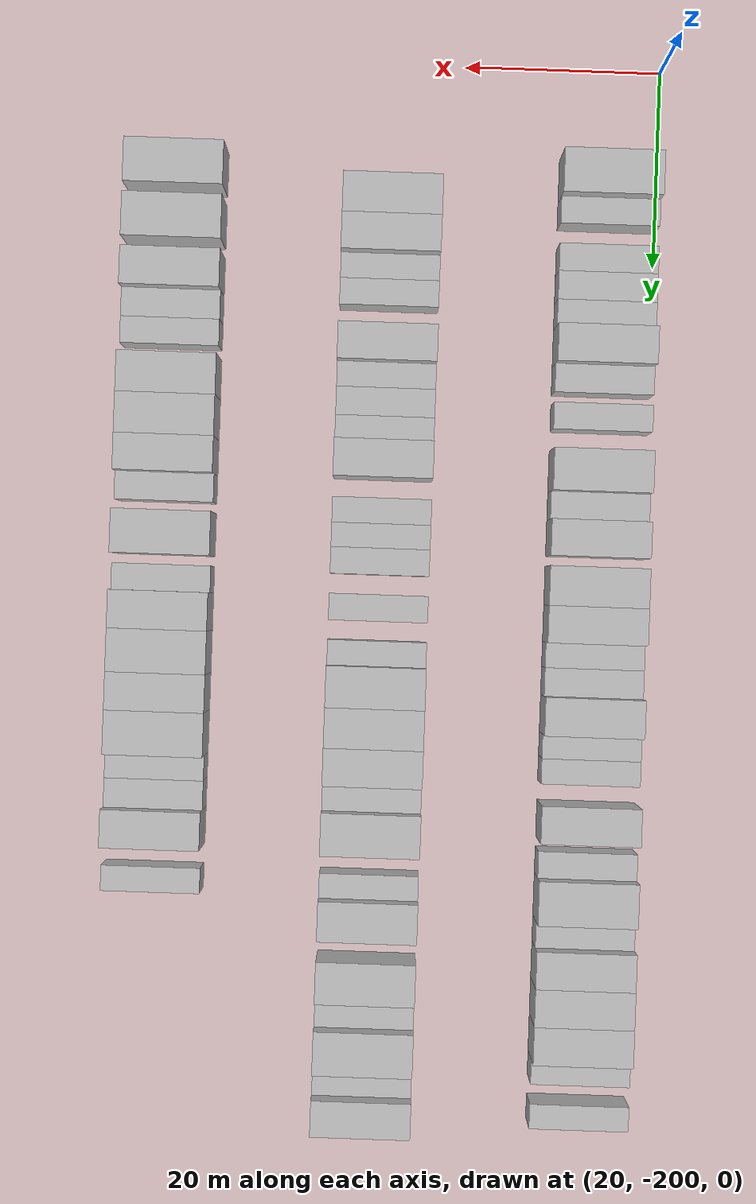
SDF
<sdf version="1.6">
 <world name="default">
  <model name="building_50">
   <static>1</static>
   <pose>25.0000 -188.4832 0 0.000000 0.000000 0.000000</pose>
   <link name="link">
    <pose>0 0 4.50 0 0 0</pose>
    <collision name="collision"><geometry><box><size>10.0000 4.4485 9.0000</size></box></geometry></collision>
    <visual name="visual">
     <cast_shadows>0</cast_shadows>
     <geometry><box><size>10.0000 4.4485 9.0000</size></box></geometry>
     <material>
      <script>
       <uri>model://HANNAS_wall/materials/scripts</uri>
       <uri>model://HANNAS_wall/materials/textures</uri>
       <name>vrc/HANNAS_wall</name>
      </script>
     </material>
    </visual>
   </link>
  </model>
  <model name="building_51">
   <static>1</static>
   <pose>25.0000 -184.9009 0 0.000000 0.000000 0.000000</pose>
   <link name="link">
    <pose>0 0 3.00 0 0 0</pose>
    <collision name="collision"><geometry><box><size>10.0000 2.7162 6.0000</size></box></geometry></collision>
    <visual name="visual">
     <cast_shadows>0</cast_shadows>
     <geometry><box><size>10.0000 2.7162 6.0000</size></box></geometry>
     <material>
      <script>
       <uri>model://HANNAS_wall/materials/scripts</uri>
       <uri>model://HANNAS_wall/materials/textures</uri>
       <name>vrc/HANNAS_wall</name>
      </script>
     </material>
    </visual>
   </link>
  </model>
  <model name="building_52">
   <static>1</static>
   <pose>25.0000 -180.1478 0 0.000000 0.000000 0.000000</pose>
   <link name="link">
    <pose>0 0 3.00 0 0 0</pose>
    <collision name="collision"><geometry><box><size>10.0000 2.7901 6.0000</size></box></geometry></collision>
    <visual name="visual">
     <cast_shadows>0</cast_shadows>
     <geometry><box><size>10.0000 2.7901 6.0000</size></box></geometry>
     <material>
      <script>
       <uri>model://HANNAS_wall/materials/scripts</uri>
       <uri>model://HANNAS_wall/materials/textures</uri>
       <name>vrc/HANNAS_wall</name>
      </script>
     </material>
    </visual>
   </link>
  </model>
  <model name="building_53">
   <static>1</static>
   <pose>25.0000 -177.3120 0 0.000000 0.000000 0.000000</pose>
   <link name="link">
    <pose>0 0 3.00 0 0 0</pose>
    <collision name="collision"><geometry><box><size>10.0000 2.8815 6.0000</size></box></geometry></collision>
    <visual name="visual">
     <cast_shadows>0</cast_shadows>
     <geometry><box><size>10.0000 2.8815 6.0000</size></box></geometry>
     <material>
      <script>
       <uri>model://HANNAS_wall/materials/scripts</uri>
       <uri>model://HANNAS_wall/materials/textures</uri>
       <name>vrc/HANNAS_wall</name>
      </script>
     </material>
    </visual>
   </link>
  </model>
  <model name="building_54">
   <static>1</static>
   <pose>25.0000 -174.5339 0 0.000000 0.000000 0.000000</pose>
   <link name="link">
    <pose>0 0 3.00 0 0 0</pose>
    <collision name="collision"><geometry><box><size>10.0000 2.6746 6.0000</size></box></geometry></collision>
    <visual name="visual">
     <cast_shadows>0</cast_shadows>
     <geometry><box><size>10.0000 2.6746 6.0000</size></box></geometry>
     <material>
      <script>
       <uri>model://HANNAS_wall/materials/scripts</uri>
       <uri>model://HANNAS_wall/materials/textures</uri>
       <name>vrc/HANNAS_wall</name>
      </script>
     </material>
    </visual>
   </link>
  </model>
  <model name="building_55">
   <static>1</static>
   <pose>25.0000 -171.2971 0 0.000000 0.000000 0.000000</pose>
   <link name="link">
    <pose>0 0 4.50 0 0 0</pose>
    <collision name="collision"><geometry><box><size>10.0000 3.7990 9.0000</size></box></geometry></collision>
    <visual name="visual">
     <cast_shadows>0</cast_shadows>
     <geometry><box><size>10.0000 3.7990 9.0000</size></box></geometry>
     <material>
      <script>
       <uri>model://HANNAS_wall/materials/scripts</uri>
       <uri>model://HANNAS_wall/materials/textures</uri>
       <name>vrc/HANNAS_wall</name>
      </script>
     </material>
    </visual>
   </link>
  </model>
  <model name="building_56">
   <static>1</static>
   <pose>25.0000 -167.9520 0 0.000000 0.000000 0.000000</pose>
   <link name="link">
    <pose>0 0 3.00 0 0 0</pose>
    <collision name="collision"><geometry><box><size>10.0000 2.8911 6.0000</size></box></geometry></collision>
    <visual name="visual">
     <cast_shadows>0</cast_shadows>
     <geometry><box><size>10.0000 2.8911 6.0000</size></box></geometry>
     <material>
      <script>
       <uri>model://HANNAS_wall/materials/scripts</uri>
       <uri>model://HANNAS_wall/materials/textures</uri>
       <name>vrc/HANNAS_wall</name>
      </script>
     </material>
    </visual>
   </link>
  </model>
  <model name="building_57">
   <static>1</static>
   <pose>25.0000 -164.1406 0 0.000000 0.000000 0.000000</pose>
   <link name="link">
    <pose>0 0 3.00 0 0 0</pose>
    <collision name="collision"><geometry><box><size>10.0000 2.7318 6.0000</size></box></geometry></collision>
    <visual name="visual">
     <cast_shadows>0</cast_shadows>
     <geometry><box><size>10.0000 2.7318 6.0000</size></box></geometry>
     <material>
      <script>
       <uri>model://HANNAS_wall/materials/scripts</uri>
       <uri>model://HANNAS_wall/materials/textures</uri>
       <name>vrc/HANNAS_wall</name>
      </script>
     </material>
    </visual>
   </link>
  </model>
  <model name="building_58">
   <static>1</static>
   <pose>25.0000 -158.6463 0 0.000000 0.000000 0.000000</pose>
   <link name="link">
    <pose>0 0 4.50 0 0 0</pose>
    <collision name="collision"><geometry><box><size>10.0000 4.2568 9.0000</size></box></geometry></collision>
    <visual name="visual">
     <cast_shadows>0</cast_shadows>
     <geometry><box><size>10.0000 4.2568 9.0000</size></box></geometry>
     <material>
      <script>
       <uri>model://HANNAS_wall/materials/scripts</uri>
       <uri>model://HANNAS_wall/materials/textures</uri>
       <name>vrc/HANNAS_wall</name>
      </script>
     </material>
    </visual>
   </link>
  </model>
  <model name="building_59">
   <static>1</static>
   <pose>25.0000 -155.0897 0 0.000000 0.000000 0.000000</pose>
   <link name="link">
    <pose>0 0 3.00 0 0 0</pose>
    <collision name="collision"><geometry><box><size>10.0000 2.8565 6.0000</size></box></geometry></collision>
    <visual name="visual">
     <cast_shadows>0</cast_shadows>
     <geometry><box><size>10.0000 2.8565 6.0000</size></box></geometry>
     <material>
      <script>
       <uri>model://HANNAS_wall/materials/scripts</uri>
       <uri>model://HANNAS_wall/materials/textures</uri>
       <name>vrc/HANNAS_wall</name>
      </script>
     </material>
    </visual>
   </link>
  </model>
  <model name="building_60">
   <static>1</static>
   <pose>25.0000 -151.8182 0 0.000000 0.000000 0.000000</pose>
   <link name="link">
    <pose>0 0 4.50 0 0 0</pose>
    <collision name="collision"><geometry><box><size>10.0000 3.6864 9.0000</size></box></geometry></collision>
    <visual name="visual">
     <cast_shadows>0</cast_shadows>
     <geometry><box><size>10.0000 3.6864 9.0000</size></box></geometry>
     <material>
      <script>
       <uri>model://HANNAS_wall/materials/scripts</uri>
       <uri>model://HANNAS_wall/materials/textures</uri>
       <name>vrc/HANNAS_wall</name>
      </script>
     </material>
    </visual>
   </link>
  </model>
  <model name="building_61">
   <static>1</static>
   <pose>25.0000 -146.9808 0 0.000000 0.000000 0.000000</pose>
   <link name="link">
    <pose>0 0 4.50 0 0 0</pose>
    <collision name="collision"><geometry><box><size>10.0000 3.9885 9.0000</size></box></geometry></collision>
    <visual name="visual">
     <cast_shadows>0</cast_shadows>
     <geometry><box><size>10.0000 3.9885 9.0000</size></box></geometry>
     <material>
      <script>
       <uri>model://HANNAS_wall/materials/scripts</uri>
       <uri>model://HANNAS_wall/materials/textures</uri>
       <name>vrc/HANNAS_wall</name>
      </script>
     </material>
    </visual>
   </link>
  </model>
  <model name="building_62">
   <static>1</static>
   <pose>25.0000 -143.1180 0 0.000000 0.000000 0.000000</pose>
   <link name="link">
    <pose>0 0 4.50 0 0 0</pose>
    <collision name="collision"><geometry><box><size>10.0000 3.7372 9.0000</size></box></geometry></collision>
    <visual name="visual">
     <cast_shadows>0</cast_shadows>
     <geometry><box><size>10.0000 3.7372 9.0000</size></box></geometry>
     <material>
      <script>
       <uri>model://HANNAS_wall/materials/scripts</uri>
       <uri>model://HANNAS_wall/materials/textures</uri>
       <name>vrc/HANNAS_wall</name>
      </script>
     </material>
    </visual>
   </link>
  </model>
  <model name="building_63">
   <static>1</static>
   <pose>25.0000 -139.9731 0 0.000000 0.000000 0.000000</pose>
   <link name="link">
    <pose>0 0 3.00 0 0 0</pose>
    <collision name="collision"><geometry><box><size>10.0000 2.5526 6.0000</size></box></geometry></collision>
    <visual name="visual">
     <cast_shadows>0</cast_shadows>
     <geometry><box><size>10.0000 2.5526 6.0000</size></box></geometry>
     <material>
      <script>
       <uri>model://HANNAS_wall/materials/scripts</uri>
       <uri>model://HANNAS_wall/materials/textures</uri>
       <name>vrc/HANNAS_wall</name>
      </script>
     </material>
    </visual>
   </link>
  </model>
  <model name="building_64">
   <static>1</static>
   <pose>25.0000 -137.2530 0 0.000000 0.000000 0.000000</pose>
   <link name="link">
    <pose>0 0 3.00 0 0 0</pose>
    <collision name="collision"><geometry><box><size>10.0000 2.8875 6.0000</size></box></geometry></collision>
    <visual name="visual">
     <cast_shadows>0</cast_shadows>
     <geometry><box><size>10.0000 2.8875 6.0000</size></box></geometry>
     <material>
      <script>
       <uri>model://HANNAS_wall/materials/scripts</uri>
       <uri>model://HANNAS_wall/materials/textures</uri>
       <name>vrc/HANNAS_wall</name>
      </script>
     </material>
    </visual>
   </link>
  </model>
  <model name="building_65">
   <static>1</static>
   <pose>25.0000 -133.8776 0 0.000000 0.000000 0.000000</pose>
   <link name="link">
    <pose>0 0 4.50 0 0 0</pose>
    <collision name="collision"><geometry><box><size>10.0000 3.8632 9.0000</size></box></geometry></collision>
    <visual name="visual">
     <cast_shadows>0</cast_shadows>
     <geometry><box><size>10.0000 3.8632 9.0000</size></box></geometry>
     <material>
      <script>
       <uri>model://HANNAS_wall/materials/scripts</uri>
       <uri>model://HANNAS_wall/materials/textures</uri>
       <name>vrc/HANNAS_wall</name>
      </script>
     </material>
    </visual>
   </link>
  </model>
  <model name="building_66">
   <static>1</static>
   <pose>25.0000 -130.7321 0 0.000000 0.000000 0.000000</pose>
   <link name="link">
    <pose>0 0 3.00 0 0 0</pose>
    <collision name="collision"><geometry><box><size>10.0000 2.4278 6.0000</size></box></geometry></collision>
    <visual name="visual">
     <cast_shadows>0</cast_shadows>
     <geometry><box><size>10.0000 2.4278 6.0000</size></box></geometry>
     <material>
      <script>
       <uri>model://HANNAS_wall/materials/scripts</uri>
       <uri>model://HANNAS_wall/materials/textures</uri>
       <name>vrc/HANNAS_wall</name>
      </script>
     </material>
    </visual>
   </link>
  </model>
  <model name="building_67">
   <static>1</static>
   <pose>25.0000 -128.2432 0 0.000000 0.000000 0.000000</pose>
   <link name="link">
    <pose>0 0 3.00 0 0 0</pose>
    <collision name="collision"><geometry><box><size>10.0000 2.5500 6.0000</size></box></geometry></collision>
    <visual name="visual">
     <cast_shadows>0</cast_shadows>
     <geometry><box><size>10.0000 2.5500 6.0000</size></box></geometry>
     <material>
      <script>
       <uri>model://HANNAS_wall/materials/scripts</uri>
       <uri>model://HANNAS_wall/materials/textures</uri>
       <name>vrc/HANNAS_wall</name>
      </script>
     </material>
    </visual>
   </link>
  </model>
  <model name="building_68">
   <static>1</static>
   <pose>25.0000 -123.0673 0 0.000000 0.000000 0.000000</pose>
   <link name="link">
    <pose>0 0 4.50 0 0 0</pose>
    <collision name="collision"><geometry><box><size>10.0000 3.8017 9.0000</size></box></geometry></collision>
    <visual name="visual">
     <cast_shadows>0</cast_shadows>
     <geometry><box><size>10.0000 3.8017 9.0000</size></box></geometry>
     <material>
      <script>
       <uri>model://HANNAS_wall/materials/scripts</uri>
       <uri>model://HANNAS_wall/materials/textures</uri>
       <name>vrc/HANNAS_wall</name>
      </script>
     </material>
    </visual>
   </link>
  </model>
  <model name="building_69">
   <static>1</static>
   <pose>25.0000 -118.8136 0 0.000000 0.000000 0.000000</pose>
   <link name="link">
    <pose>0 0 3.00 0 0 0</pose>
    <collision name="collision"><geometry><box><size>10.0000 2.7057 6.0000</size></box></geometry></collision>
    <visual name="visual">
     <cast_shadows>0</cast_shadows>
     <geometry><box><size>10.0000 2.7057 6.0000</size></box></geometry>
     <material>
      <script>
       <uri>model://HANNAS_wall/materials/scripts</uri>
       <uri>model://HANNAS_wall/materials/textures</uri>
       <name>vrc/HANNAS_wall</name>
      </script>
     </material>
    </visual>
   </link>
  </model>
  <model name="building_70">
   <static>1</static>
   <pose>25.0000 -115.2338 0 0.000000 0.000000 0.000000</pose>
   <link name="link">
    <pose>0 0 4.50 0 0 0</pose>
    <collision name="collision"><geometry><box><size>10.0000 4.4539 9.0000</size></box></geometry></collision>
    <visual name="visual">
     <cast_shadows>0</cast_shadows>
     <geometry><box><size>10.0000 4.4539 9.0000</size></box></geometry>
     <material>
      <script>
       <uri>model://HANNAS_wall/materials/scripts</uri>
       <uri>model://HANNAS_wall/materials/textures</uri>
       <name>vrc/HANNAS_wall</name>
      </script>
     </material>
    </visual>
   </link>
  </model>
  <model name="building_71">
   <static>1</static>
   <pose>25.0000 -111.7241 0 0.000000 0.000000 0.000000</pose>
   <link name="link">
    <pose>0 0 3.00 0 0 0</pose>
    <collision name="collision"><geometry><box><size>10.0000 2.5655 6.0000</size></box></geometry></collision>
    <visual name="visual">
     <cast_shadows>0</cast_shadows>
     <geometry><box><size>10.0000 2.5655 6.0000</size></box></geometry>
     <material>
      <script>
       <uri>model://HANNAS_wall/materials/scripts</uri>
       <uri>model://HANNAS_wall/materials/textures</uri>
       <name>vrc/HANNAS_wall</name>
      </script>
     </material>
    </visual>
   </link>
  </model>
  <model name="building_72">
   <static>1</static>
   <pose>25.0000 -108.5596 0 0.000000 0.000000 0.000000</pose>
   <link name="link">
    <pose>0 0 4.50 0 0 0</pose>
    <collision name="collision"><geometry><box><size>10.0000 3.7634 9.0000</size></box></geometry></collision>
    <visual name="visual">
     <cast_shadows>0</cast_shadows>
     <geometry><box><size>10.0000 3.7634 9.0000</size></box></geometry>
     <material>
      <script>
       <uri>model://HANNAS_wall/materials/scripts</uri>
       <uri>model://HANNAS_wall/materials/textures</uri>
       <name>vrc/HANNAS_wall</name>
      </script>
     </material>
    </visual>
   </link>
  </model>
  <model name="building_73">
   <static>1</static>
   <pose>25.0000 -104.7897 0 0.000000 0.000000 0.000000</pose>
   <link name="link">
    <pose>0 0 4.50 0 0 0</pose>
    <collision name="collision"><geometry><box><size>10.0000 3.7764 9.0000</size></box></geometry></collision>
    <visual name="visual">
     <cast_shadows>0</cast_shadows>
     <geometry><box><size>10.0000 3.7764 9.0000</size></box></geometry>
     <material>
      <script>
       <uri>model://HANNAS_wall/materials/scripts</uri>
       <uri>model://HANNAS_wall/materials/textures</uri>
       <name>vrc/HANNAS_wall</name>
      </script>
     </material>
    </visual>
   </link>
  </model>
  <model name="building_74">
   <static>1</static>
   <pose>25.0000 -101.0080 0 0.000000 0.000000 0.000000</pose>
   <link name="link">
    <pose>0 0 4.50 0 0 0</pose>
    <collision name="collision"><geometry><box><size>10.0000 3.7871 9.0000</size></box></geometry></collision>
    <visual name="visual">
     <cast_shadows>0</cast_shadows>
     <geometry><box><size>10.0000 3.7871 9.0000</size></box></geometry>
     <material>
      <script>
       <uri>model://HANNAS_wall/materials/scripts</uri>
       <uri>model://HANNAS_wall/materials/textures</uri>
       <name>vrc/HANNAS_wall</name>
      </script>
     </material>
    </visual>
   </link>
  </model>
  <model name="building_75">
   <static>1</static>
   <pose>25.0000 -97.9009 0 0.000000 0.000000 0.000000</pose>
   <link name="link">
    <pose>0 0 3.00 0 0 0</pose>
    <collision name="collision"><geometry><box><size>10.0000 2.4271 6.0000</size></box></geometry></collision>
    <visual name="visual">
     <cast_shadows>0</cast_shadows>
     <geometry><box><size>10.0000 2.4271 6.0000</size></box></geometry>
     <material>
      <script>
       <uri>model://HANNAS_wall/materials/scripts</uri>
       <uri>model://HANNAS_wall/materials/textures</uri>
       <name>vrc/HANNAS_wall</name>
      </script>
     </material>
    </visual>
   </link>
  </model>
  <model name="building_76">
   <static>1</static>
   <pose>25.0000 -93.4481 0 0.000000 0.000000 0.000000</pose>
   <link name="link">
    <pose>0 0 3.00 0 0 0</pose>
    <collision name="collision"><geometry><box><size>10.0000 2.4784 6.0000</size></box></geometry></collision>
    <visual name="visual">
     <cast_shadows>0</cast_shadows>
     <geometry><box><size>10.0000 2.4784 6.0000</size></box></geometry>
     <material>
      <script>
       <uri>model://HANNAS_wall/materials/scripts</uri>
       <uri>model://HANNAS_wall/materials/textures</uri>
       <name>vrc/HANNAS_wall</name>
      </script>
     </material>
    </visual>
   </link>
  </model>
  <model name="building_246">
   <static>1</static>
   <pose>47.0000 -185.5443 0 0.000000 0.000000 0.000000</pose>
   <link name="link">
    <pose>0 0 4.50 0 0 0</pose>
    <collision name="collision"><geometry><box><size>10.0000 4.0463 9.0000</size></box></geometry></collision>
    <visual name="visual">
     <cast_shadows>0</cast_shadows>
     <geometry><box><size>10.0000 4.0463 9.0000</size></box></geometry>
     <material>
      <script>
       <uri>model://HANNAS_wall/materials/scripts</uri>
       <uri>model://HANNAS_wall/materials/textures</uri>
       <name>vrc/HANNAS_wall</name>
      </script>
     </material>
    </visual>
   </link>
  </model>
  <model name="building_247">
   <static>1</static>
   <pose>47.0000 -181.6767 0 0.000000 0.000000 0.000000</pose>
   <link name="link">
    <pose>0 0 4.50 0 0 0</pose>
    <collision name="collision"><geometry><box><size>10.0000 3.6891 9.0000</size></box></geometry></collision>
    <visual name="visual">
     <cast_shadows>0</cast_shadows>
     <geometry><box><size>10.0000 3.6891 9.0000</size></box></geometry>
     <material>
      <script>
       <uri>model://HANNAS_wall/materials/scripts</uri>
       <uri>model://HANNAS_wall/materials/textures</uri>
       <name>vrc/HANNAS_wall</name>
      </script>
     </material>
    </visual>
   </link>
  </model>
  <model name="building_248">
   <static>1</static>
   <pose>47.0000 -178.5487 0 0.000000 0.000000 0.000000</pose>
   <link name="link">
    <pose>0 0 3.00 0 0 0</pose>
    <collision name="collision"><geometry><box><size>10.0000 2.5668 6.0000</size></box></geometry></collision>
    <visual name="visual">
     <cast_shadows>0</cast_shadows>
     <geometry><box><size>10.0000 2.5668 6.0000</size></box></geometry>
     <material>
      <script>
       <uri>model://HANNAS_wall/materials/scripts</uri>
       <uri>model://HANNAS_wall/materials/textures</uri>
       <name>vrc/HANNAS_wall</name>
      </script>
     </material>
    </visual>
   </link>
  </model>
  <model name="building_249">
   <static>1</static>
   <pose>47.0000 -175.9302 0 0.000000 0.000000 0.000000</pose>
   <link name="link">
    <pose>0 0 3.00 0 0 0</pose>
    <collision name="collision"><geometry><box><size>10.0000 2.6702 6.0000</size></box></geometry></collision>
    <visual name="visual">
     <cast_shadows>0</cast_shadows>
     <geometry><box><size>10.0000 2.6702 6.0000</size></box></geometry>
     <material>
      <script>
       <uri>model://HANNAS_wall/materials/scripts</uri>
       <uri>model://HANNAS_wall/materials/textures</uri>
       <name>vrc/HANNAS_wall</name>
      </script>
     </material>
    </visual>
   </link>
  </model>
  <model name="building_250">
   <static>1</static>
   <pose>47.0000 -170.7381 0 0.000000 0.000000 0.000000</pose>
   <link name="link">
    <pose>0 0 4.50 0 0 0</pose>
    <collision name="collision"><geometry><box><size>10.0000 3.7142 9.0000</size></box></geometry></collision>
    <visual name="visual">
     <cast_shadows>0</cast_shadows>
     <geometry><box><size>10.0000 3.7142 9.0000</size></box></geometry>
     <material>
      <script>
       <uri>model://HANNAS_wall/materials/scripts</uri>
       <uri>model://HANNAS_wall/materials/textures</uri>
       <name>vrc/HANNAS_wall</name>
      </script>
     </material>
    </visual>
   </link>
  </model>
  <model name="building_251">
   <static>1</static>
   <pose>47.0000 -167.5994 0 0.000000 0.000000 0.000000</pose>
   <link name="link">
    <pose>0 0 3.00 0 0 0</pose>
    <collision name="collision"><geometry><box><size>10.0000 2.5632 6.0000</size></box></geometry></collision>
    <visual name="visual">
     <cast_shadows>0</cast_shadows>
     <geometry><box><size>10.0000 2.5632 6.0000</size></box></geometry>
     <material>
      <script>
       <uri>model://HANNAS_wall/materials/scripts</uri>
       <uri>model://HANNAS_wall/materials/textures</uri>
       <name>vrc/HANNAS_wall</name>
      </script>
     </material>
    </visual>
   </link>
  </model>
  <model name="building_252">
   <static>1</static>
   <pose>47.0000 -164.8844 0 0.000000 0.000000 0.000000</pose>
   <link name="link">
    <pose>0 0 3.00 0 0 0</pose>
    <collision name="collision"><geometry><box><size>10.0000 2.8669 6.0000</size></box></geometry></collision>
    <visual name="visual">
     <cast_shadows>0</cast_shadows>
     <geometry><box><size>10.0000 2.8669 6.0000</size></box></geometry>
     <material>
      <script>
       <uri>model://HANNAS_wall/materials/scripts</uri>
       <uri>model://HANNAS_wall/materials/textures</uri>
       <name>vrc/HANNAS_wall</name>
      </script>
     </material>
    </visual>
   </link>
  </model>
  <model name="building_253">
   <static>1</static>
   <pose>47.0000 -162.2111 0 0.000000 0.000000 0.000000</pose>
   <link name="link">
    <pose>0 0 3.00 0 0 0</pose>
    <collision name="collision"><geometry><box><size>10.0000 2.4797 6.0000</size></box></geometry></collision>
    <visual name="visual">
     <cast_shadows>0</cast_shadows>
     <geometry><box><size>10.0000 2.4797 6.0000</size></box></geometry>
     <material>
      <script>
       <uri>model://HANNAS_wall/materials/scripts</uri>
       <uri>model://HANNAS_wall/materials/textures</uri>
       <name>vrc/HANNAS_wall</name>
      </script>
     </material>
    </visual>
   </link>
  </model>
  <model name="building_254">
   <static>1</static>
   <pose>47.0000 -159.0828 0 0.000000 0.000000 0.000000</pose>
   <link name="link">
    <pose>0 0 4.50 0 0 0</pose>
    <collision name="collision"><geometry><box><size>10.0000 3.7768 9.0000</size></box></geometry></collision>
    <visual name="visual">
     <cast_shadows>0</cast_shadows>
     <geometry><box><size>10.0000 3.7768 9.0000</size></box></geometry>
     <material>
      <script>
       <uri>model://HANNAS_wall/materials/scripts</uri>
       <uri>model://HANNAS_wall/materials/textures</uri>
       <name>vrc/HANNAS_wall</name>
      </script>
     </material>
    </visual>
   </link>
  </model>
  <model name="building_255">
   <static>1</static>
   <pose>47.0000 -153.9006 0 0.000000 0.000000 0.000000</pose>
   <link name="link">
    <pose>0 0 3.00 0 0 0</pose>
    <collision name="collision"><geometry><box><size>10.0000 2.5877 6.0000</size></box></geometry></collision>
    <visual name="visual">
     <cast_shadows>0</cast_shadows>
     <geometry><box><size>10.0000 2.5877 6.0000</size></box></geometry>
     <material>
      <script>
       <uri>model://HANNAS_wall/materials/scripts</uri>
       <uri>model://HANNAS_wall/materials/textures</uri>
       <name>vrc/HANNAS_wall</name>
      </script>
     </material>
    </visual>
   </link>
  </model>
  <model name="building_256">
   <static>1</static>
   <pose>47.0000 -151.3706 0 0.000000 0.000000 0.000000</pose>
   <link name="link">
    <pose>0 0 3.00 0 0 0</pose>
    <collision name="collision"><geometry><box><size>10.0000 2.4723 6.0000</size></box></geometry></collision>
    <visual name="visual">
     <cast_shadows>0</cast_shadows>
     <geometry><box><size>10.0000 2.4723 6.0000</size></box></geometry>
     <material>
      <script>
       <uri>model://HANNAS_wall/materials/scripts</uri>
       <uri>model://HANNAS_wall/materials/textures</uri>
       <name>vrc/HANNAS_wall</name>
      </script>
     </material>
    </visual>
   </link>
  </model>
  <model name="building_257">
   <static>1</static>
   <pose>47.0000 -148.7866 0 0.000000 0.000000 0.000000</pose>
   <link name="link">
    <pose>0 0 3.00 0 0 0</pose>
    <collision name="collision"><geometry><box><size>10.0000 2.6957 6.0000</size></box></geometry></collision>
    <visual name="visual">
     <cast_shadows>0</cast_shadows>
     <geometry><box><size>10.0000 2.6957 6.0000</size></box></geometry>
     <material>
      <script>
       <uri>model://HANNAS_wall/materials/scripts</uri>
       <uri>model://HANNAS_wall/materials/textures</uri>
       <name>vrc/HANNAS_wall</name>
      </script>
     </material>
    </visual>
   </link>
  </model>
  <model name="building_258">
   <static>1</static>
   <pose>47.0000 -144.0952 0 0.000000 0.000000 0.000000</pose>
   <link name="link">
    <pose>0 0 3.00 0 0 0</pose>
    <collision name="collision"><geometry><box><size>10.0000 2.6871 6.0000</size></box></geometry></collision>
    <visual name="visual">
     <cast_shadows>0</cast_shadows>
     <geometry><box><size>10.0000 2.6871 6.0000</size></box></geometry>
     <material>
      <script>
       <uri>model://HANNAS_wall/materials/scripts</uri>
       <uri>model://HANNAS_wall/materials/textures</uri>
       <name>vrc/HANNAS_wall</name>
      </script>
     </material>
    </visual>
   </link>
  </model>
  <model name="building_259">
   <static>1</static>
   <pose>47.0000 -139.4735 0 0.000000 0.000000 0.000000</pose>
   <link name="link">
    <pose>0 0 3.00 0 0 0</pose>
    <collision name="collision"><geometry><box><size>10.0000 2.5563 6.0000</size></box></geometry></collision>
    <visual name="visual">
     <cast_shadows>0</cast_shadows>
     <geometry><box><size>10.0000 2.5563 6.0000</size></box></geometry>
     <material>
      <script>
       <uri>model://HANNAS_wall/materials/scripts</uri>
       <uri>model://HANNAS_wall/materials/textures</uri>
       <name>vrc/HANNAS_wall</name>
      </script>
     </material>
    </visual>
   </link>
  </model>
  <model name="building_260">
   <static>1</static>
   <pose>47.0000 -136.1055 0 0.000000 0.000000 0.000000</pose>
   <link name="link">
    <pose>0 0 4.50 0 0 0</pose>
    <collision name="collision"><geometry><box><size>10.0000 4.1797 9.0000</size></box></geometry></collision>
    <visual name="visual">
     <cast_shadows>0</cast_shadows>
     <geometry><box><size>10.0000 4.1797 9.0000</size></box></geometry>
     <material>
      <script>
       <uri>model://HANNAS_wall/materials/scripts</uri>
       <uri>model://HANNAS_wall/materials/textures</uri>
       <name>vrc/HANNAS_wall</name>
      </script>
     </material>
    </visual>
   </link>
  </model>
  <model name="building_261">
   <static>1</static>
   <pose>47.0000 -131.9949 0 0.000000 0.000000 0.000000</pose>
   <link name="link">
    <pose>0 0 4.50 0 0 0</pose>
    <collision name="collision"><geometry><box><size>10.0000 4.0415 9.0000</size></box></geometry></collision>
    <visual name="visual">
     <cast_shadows>0</cast_shadows>
     <geometry><box><size>10.0000 4.0415 9.0000</size></box></geometry>
     <material>
      <script>
       <uri>model://HANNAS_wall/materials/scripts</uri>
       <uri>model://HANNAS_wall/materials/textures</uri>
       <name>vrc/HANNAS_wall</name>
      </script>
     </material>
    </visual>
   </link>
  </model>
  <model name="building_262">
   <static>1</static>
   <pose>47.0000 -128.0720 0 0.000000 0.000000 0.000000</pose>
   <link name="link">
    <pose>0 0 4.50 0 0 0</pose>
    <collision name="collision"><geometry><box><size>10.0000 3.8044 9.0000</size></box></geometry></collision>
    <visual name="visual">
     <cast_shadows>0</cast_shadows>
     <geometry><box><size>10.0000 3.8044 9.0000</size></box></geometry>
     <material>
      <script>
       <uri>model://HANNAS_wall/materials/scripts</uri>
       <uri>model://HANNAS_wall/materials/textures</uri>
       <name>vrc/HANNAS_wall</name>
      </script>
     </material>
    </visual>
   </link>
  </model>
  <model name="building_263">
   <static>1</static>
   <pose>47.0000 -124.8371 0 0.000000 0.000000 0.000000</pose>
   <link name="link">
    <pose>0 0 3.00 0 0 0</pose>
    <collision name="collision"><geometry><box><size>10.0000 2.6654 6.0000</size></box></geometry></collision>
    <visual name="visual">
     <cast_shadows>0</cast_shadows>
     <geometry><box><size>10.0000 2.6654 6.0000</size></box></geometry>
     <material>
      <script>
       <uri>model://HANNAS_wall/materials/scripts</uri>
       <uri>model://HANNAS_wall/materials/textures</uri>
       <name>vrc/HANNAS_wall</name>
      </script>
     </material>
    </visual>
   </link>
  </model>
  <model name="building_264">
   <static>1</static>
   <pose>47.0000 -121.3504 0 0.000000 0.000000 0.000000</pose>
   <link name="link">
    <pose>0 0 4.50 0 0 0</pose>
    <collision name="collision"><geometry><box><size>10.0000 4.3080 9.0000</size></box></geometry></collision>
    <visual name="visual">
     <cast_shadows>0</cast_shadows>
     <geometry><box><size>10.0000 4.3080 9.0000</size></box></geometry>
     <material>
      <script>
       <uri>model://HANNAS_wall/materials/scripts</uri>
       <uri>model://HANNAS_wall/materials/textures</uri>
       <name>vrc/HANNAS_wall</name>
      </script>
     </material>
    </visual>
   </link>
  </model>
  <model name="building_265">
   <static>1</static>
   <pose>47.0000 -115.9403 0 0.000000 0.000000 0.000000</pose>
   <link name="link">
    <pose>0 0 3.00 0 0 0</pose>
    <collision name="collision"><geometry><box><size>10.0000 2.5122 6.0000</size></box></geometry></collision>
    <visual name="visual">
     <cast_shadows>0</cast_shadows>
     <geometry><box><size>10.0000 2.5122 6.0000</size></box></geometry>
     <material>
      <script>
       <uri>model://HANNAS_wall/materials/scripts</uri>
       <uri>model://HANNAS_wall/materials/textures</uri>
       <name>vrc/HANNAS_wall</name>
      </script>
     </material>
    </visual>
   </link>
  </model>
  <model name="building_266">
   <static>1</static>
   <pose>47.0000 -112.6682 0 0.000000 0.000000 0.000000</pose>
   <link name="link">
    <pose>0 0 4.50 0 0 0</pose>
    <collision name="collision"><geometry><box><size>10.0000 4.0321 9.0000</size></box></geometry></collision>
    <visual name="visual">
     <cast_shadows>0</cast_shadows>
     <geometry><box><size>10.0000 4.0321 9.0000</size></box></geometry>
     <material>
      <script>
       <uri>model://HANNAS_wall/materials/scripts</uri>
       <uri>model://HANNAS_wall/materials/textures</uri>
       <name>vrc/HANNAS_wall</name>
      </script>
     </material>
    </visual>
   </link>
  </model>
  <model name="building_267">
   <static>1</static>
   <pose>47.0000 -106.5320 0 0.000000 0.000000 0.000000</pose>
   <link name="link">
    <pose>0 0 4.50 0 0 0</pose>
    <collision name="collision"><geometry><box><size>10.0000 4.2402 9.0000</size></box></geometry></collision>
    <visual name="visual">
     <cast_shadows>0</cast_shadows>
     <geometry><box><size>10.0000 4.2402 9.0000</size></box></geometry>
     <material>
      <script>
       <uri>model://HANNAS_wall/materials/scripts</uri>
       <uri>model://HANNAS_wall/materials/textures</uri>
       <name>vrc/HANNAS_wall</name>
      </script>
     </material>
    </visual>
   </link>
  </model>
  <model name="building_268">
   <static>1</static>
   <pose>47.0000 -103.0574 0 0.000000 0.000000 0.000000</pose>
   <link name="link">
    <pose>0 0 3.00 0 0 0</pose>
    <collision name="collision"><geometry><box><size>10.0000 2.7089 6.0000</size></box></geometry></collision>
    <visual name="visual">
     <cast_shadows>0</cast_shadows>
     <geometry><box><size>10.0000 2.7089 6.0000</size></box></geometry>
     <material>
      <script>
       <uri>model://HANNAS_wall/materials/scripts</uri>
       <uri>model://HANNAS_wall/materials/textures</uri>
       <name>vrc/HANNAS_wall</name>
      </script>
     </material>
    </visual>
   </link>
  </model>
  <model name="building_269">
   <static>1</static>
   <pose>47.0000 -99.5098 0 0.000000 0.000000 0.000000</pose>
   <link name="link">
    <pose>0 0 4.50 0 0 0</pose>
    <collision name="collision"><geometry><box><size>10.0000 4.3864 9.0000</size></box></geometry></collision>
    <visual name="visual">
     <cast_shadows>0</cast_shadows>
     <geometry><box><size>10.0000 4.3864 9.0000</size></box></geometry>
     <material>
      <script>
       <uri>model://HANNAS_wall/materials/scripts</uri>
       <uri>model://HANNAS_wall/materials/textures</uri>
       <name>vrc/HANNAS_wall</name>
      </script>
     </material>
    </visual>
   </link>
  </model>
  <model name="building_270">
   <static>1</static>
   <pose>47.0000 -96.0729 0 0.000000 0.000000 0.000000</pose>
   <link name="link">
    <pose>0 0 3.00 0 0 0</pose>
    <collision name="collision"><geometry><box><size>10.0000 2.4874 6.0000</size></box></geometry></collision>
    <visual name="visual">
     <cast_shadows>0</cast_shadows>
     <geometry><box><size>10.0000 2.4874 6.0000</size></box></geometry>
     <material>
      <script>
       <uri>model://HANNAS_wall/materials/scripts</uri>
       <uri>model://HANNAS_wall/materials/textures</uri>
       <name>vrc/HANNAS_wall</name>
      </script>
     </material>
    </visual>
   </link>
  </model>
  <model name="building_271">
   <static>1</static>
   <pose>47.0000 -93.0230 0 0.000000 0.000000 0.000000</pose>
   <link name="link">
    <pose>0 0 4.50 0 0 0</pose>
    <collision name="collision"><geometry><box><size>10.0000 3.6124 9.0000</size></box></geometry></collision>
    <visual name="visual">
     <cast_shadows>0</cast_shadows>
     <geometry><box><size>10.0000 3.6124 9.0000</size></box></geometry>
     <material>
      <script>
       <uri>model://HANNAS_wall/materials/scripts</uri>
       <uri>model://HANNAS_wall/materials/textures</uri>
       <name>vrc/HANNAS_wall</name>
      </script>
     </material>
    </visual>
   </link>
  </model>
  <model name="building_447">
   <static>1</static>
   <pose>69.0000 -187.9897 0 0.000000 0.000000 0.000000</pose>
   <link name="link">
    <pose>0 0 4.50 0 0 0</pose>
    <collision name="collision"><geometry><box><size>10.0000 4.4139 9.0000</size></box></geometry></collision>
    <visual name="visual">
     <cast_shadows>0</cast_shadows>
     <geometry><box><size>10.0000 4.4139 9.0000</size></box></geometry>
     <material>
      <script>
       <uri>model://HANNAS_wall/materials/scripts</uri>
       <uri>model://HANNAS_wall/materials/textures</uri>
       <name>vrc/HANNAS_wall</name>
      </script>
     </material>
    </visual>
   </link>
  </model>
  <model name="building_448">
   <static>1</static>
   <pose>69.0000 -182.5820 0 0.000000 0.000000 0.000000</pose>
   <link name="link">
    <pose>0 0 4.50 0 0 0</pose>
    <collision name="collision"><geometry><box><size>10.0000 4.4014 9.0000</size></box></geometry></collision>
    <visual name="visual">
     <cast_shadows>0</cast_shadows>
     <geometry><box><size>10.0000 4.4014 9.0000</size></box></geometry>
     <material>
      <script>
       <uri>model://HANNAS_wall/materials/scripts</uri>
       <uri>model://HANNAS_wall/materials/textures</uri>
       <name>vrc/HANNAS_wall</name>
      </script>
     </material>
    </visual>
   </link>
  </model>
  <model name="building_449">
   <static>1</static>
   <pose>69.0000 -177.4650 0 0.000000 0.000000 0.000000</pose>
   <link name="link">
    <pose>0 0 4.50 0 0 0</pose>
    <collision name="collision"><geometry><box><size>10.0000 3.8327 9.0000</size></box></geometry></collision>
    <visual name="visual">
     <cast_shadows>0</cast_shadows>
     <geometry><box><size>10.0000 3.8327 9.0000</size></box></geometry>
     <material>
      <script>
       <uri>model://HANNAS_wall/materials/scripts</uri>
       <uri>model://HANNAS_wall/materials/textures</uri>
       <name>vrc/HANNAS_wall</name>
      </script>
     </material>
    </visual>
   </link>
  </model>
  <model name="building_450">
   <static>1</static>
   <pose>69.0000 -174.0860 0 0.000000 0.000000 0.000000</pose>
   <link name="link">
    <pose>0 0 3.00 0 0 0</pose>
    <collision name="collision"><geometry><box><size>10.0000 2.9253 6.0000</size></box></geometry></collision>
    <visual name="visual">
     <cast_shadows>0</cast_shadows>
     <geometry><box><size>10.0000 2.9253 6.0000</size></box></geometry>
     <material>
      <script>
       <uri>model://HANNAS_wall/materials/scripts</uri>
       <uri>model://HANNAS_wall/materials/textures</uri>
       <name>vrc/HANNAS_wall</name>
      </script>
     </material>
    </visual>
   </link>
  </model>
  <model name="building_451">
   <static>1</static>
   <pose>69.0000 -171.2810 0 0.000000 0.000000 0.000000</pose>
   <link name="link">
    <pose>0 0 3.00 0 0 0</pose>
    <collision name="collision"><geometry><box><size>10.0000 2.6846 6.0000</size></box></geometry></collision>
    <visual name="visual">
     <cast_shadows>0</cast_shadows>
     <geometry><box><size>10.0000 2.6846 6.0000</size></box></geometry>
     <material>
      <script>
       <uri>model://HANNAS_wall/materials/scripts</uri>
       <uri>model://HANNAS_wall/materials/textures</uri>
       <name>vrc/HANNAS_wall</name>
      </script>
     </material>
    </visual>
   </link>
  </model>
  <model name="building_452">
   <static>1</static>
   <pose>69.0000 -166.8802 0 0.000000 0.000000 0.000000</pose>
   <link name="link">
    <pose>0 0 4.50 0 0 0</pose>
    <collision name="collision"><geometry><box><size>10.0000 4.1171 9.0000</size></box></geometry></collision>
    <visual name="visual">
     <cast_shadows>0</cast_shadows>
     <geometry><box><size>10.0000 4.1171 9.0000</size></box></geometry>
     <material>
      <script>
       <uri>model://HANNAS_wall/materials/scripts</uri>
       <uri>model://HANNAS_wall/materials/textures</uri>
       <name>vrc/HANNAS_wall</name>
      </script>
     </material>
    </visual>
   </link>
  </model>
  <model name="building_453">
   <static>1</static>
   <pose>69.0000 -162.7658 0 0.000000 0.000000 0.000000</pose>
   <link name="link">
    <pose>0 0 4.50 0 0 0</pose>
    <collision name="collision"><geometry><box><size>10.0000 4.1118 9.0000</size></box></geometry></collision>
    <visual name="visual">
     <cast_shadows>0</cast_shadows>
     <geometry><box><size>10.0000 4.1118 9.0000</size></box></geometry>
     <material>
      <script>
       <uri>model://HANNAS_wall/materials/scripts</uri>
       <uri>model://HANNAS_wall/materials/textures</uri>
       <name>vrc/HANNAS_wall</name>
      </script>
     </material>
    </visual>
   </link>
  </model>
  <model name="building_454">
   <static>1</static>
   <pose>69.0000 -158.8693 0 0.000000 0.000000 0.000000</pose>
   <link name="link">
    <pose>0 0 4.50 0 0 0</pose>
    <collision name="collision"><geometry><box><size>10.0000 3.6812 9.0000</size></box></geometry></collision>
    <visual name="visual">
     <cast_shadows>0</cast_shadows>
     <geometry><box><size>10.0000 3.6812 9.0000</size></box></geometry>
     <material>
      <script>
       <uri>model://HANNAS_wall/materials/scripts</uri>
       <uri>model://HANNAS_wall/materials/textures</uri>
       <name>vrc/HANNAS_wall</name>
      </script>
     </material>
    </visual>
   </link>
  </model>
  <model name="building_455">
   <static>1</static>
   <pose>69.0000 -155.5957 0 0.000000 0.000000 0.000000</pose>
   <link name="link">
    <pose>0 0 3.00 0 0 0</pose>
    <collision name="collision"><geometry><box><size>10.0000 2.8659 6.0000</size></box></geometry></collision>
    <visual name="visual">
     <cast_shadows>0</cast_shadows>
     <geometry><box><size>10.0000 2.8659 6.0000</size></box></geometry>
     <material>
      <script>
       <uri>model://HANNAS_wall/materials/scripts</uri>
       <uri>model://HANNAS_wall/materials/textures</uri>
       <name>vrc/HANNAS_wall</name>
      </script>
     </material>
    </visual>
   </link>
  </model>
  <model name="building_456">
   <static>1</static>
   <pose>69.0000 -150.9515 0 0.000000 0.000000 0.000000</pose>
   <link name="link">
    <pose>0 0 4.50 0 0 0</pose>
    <collision name="collision"><geometry><box><size>10.0000 4.4226 9.0000</size></box></geometry></collision>
    <visual name="visual">
     <cast_shadows>0</cast_shadows>
     <geometry><box><size>10.0000 4.4226 9.0000</size></box></geometry>
     <material>
      <script>
       <uri>model://HANNAS_wall/materials/scripts</uri>
       <uri>model://HANNAS_wall/materials/textures</uri>
       <name>vrc/HANNAS_wall</name>
      </script>
     </material>
    </visual>
   </link>
  </model>
  <model name="building_457">
   <static>1</static>
   <pose>69.0000 -146.3909 0 0.000000 0.000000 0.000000</pose>
   <link name="link">
    <pose>0 0 3.00 0 0 0</pose>
    <collision name="collision"><geometry><box><size>10.0000 2.6986 6.0000</size></box></geometry></collision>
    <visual name="visual">
     <cast_shadows>0</cast_shadows>
     <geometry><box><size>10.0000 2.6986 6.0000</size></box></geometry>
     <material>
      <script>
       <uri>model://HANNAS_wall/materials/scripts</uri>
       <uri>model://HANNAS_wall/materials/textures</uri>
       <name>vrc/HANNAS_wall</name>
      </script>
     </material>
    </visual>
   </link>
  </model>
  <model name="building_458">
   <static>1</static>
   <pose>69.0000 -143.1192 0 0.000000 0.000000 0.000000</pose>
   <link name="link">
    <pose>0 0 4.50 0 0 0</pose>
    <collision name="collision"><geometry><box><size>10.0000 3.8446 9.0000</size></box></geometry></collision>
    <visual name="visual">
     <cast_shadows>0</cast_shadows>
     <geometry><box><size>10.0000 3.8446 9.0000</size></box></geometry>
     <material>
      <script>
       <uri>model://HANNAS_wall/materials/scripts</uri>
       <uri>model://HANNAS_wall/materials/textures</uri>
       <name>vrc/HANNAS_wall</name>
      </script>
     </material>
    </visual>
   </link>
  </model>
  <model name="building_459">
   <static>1</static>
   <pose>69.0000 -139.0135 0 0.000000 0.000000 0.000000</pose>
   <link name="link">
    <pose>0 0 4.50 0 0 0</pose>
    <collision name="collision"><geometry><box><size>10.0000 4.3669 9.0000</size></box></geometry></collision>
    <visual name="visual">
     <cast_shadows>0</cast_shadows>
     <geometry><box><size>10.0000 4.3669 9.0000</size></box></geometry>
     <material>
      <script>
       <uri>model://HANNAS_wall/materials/scripts</uri>
       <uri>model://HANNAS_wall/materials/textures</uri>
       <name>vrc/HANNAS_wall</name>
      </script>
     </material>
    </visual>
   </link>
  </model>
  <model name="building_460">
   <static>1</static>
   <pose>69.0000 -134.9194 0 0.000000 0.000000 0.000000</pose>
   <link name="link">
    <pose>0 0 4.50 0 0 0</pose>
    <collision name="collision"><geometry><box><size>10.0000 3.8214 9.0000</size></box></geometry></collision>
    <visual name="visual">
     <cast_shadows>0</cast_shadows>
     <geometry><box><size>10.0000 3.8214 9.0000</size></box></geometry>
     <material>
      <script>
       <uri>model://HANNAS_wall/materials/scripts</uri>
       <uri>model://HANNAS_wall/materials/textures</uri>
       <name>vrc/HANNAS_wall</name>
      </script>
     </material>
    </visual>
   </link>
  </model>
  <model name="building_461">
   <static>1</static>
   <pose>69.0000 -130.7866 0 0.000000 0.000000 0.000000</pose>
   <link name="link">
    <pose>0 0 4.50 0 0 0</pose>
    <collision name="collision"><geometry><box><size>10.0000 4.4440 9.0000</size></box></geometry></collision>
    <visual name="visual">
     <cast_shadows>0</cast_shadows>
     <geometry><box><size>10.0000 4.4440 9.0000</size></box></geometry>
     <material>
      <script>
       <uri>model://HANNAS_wall/materials/scripts</uri>
       <uri>model://HANNAS_wall/materials/textures</uri>
       <name>vrc/HANNAS_wall</name>
      </script>
     </material>
    </visual>
   </link>
  </model>
  <model name="building_462">
   <static>1</static>
   <pose>69.0000 -127.3082 0 0.000000 0.000000 0.000000</pose>
   <link name="link">
    <pose>0 0 3.00 0 0 0</pose>
    <collision name="collision"><geometry><box><size>10.0000 2.5128 6.0000</size></box></geometry></collision>
    <visual name="visual">
     <cast_shadows>0</cast_shadows>
     <geometry><box><size>10.0000 2.5128 6.0000</size></box></geometry>
     <material>
      <script>
       <uri>model://HANNAS_wall/materials/scripts</uri>
       <uri>model://HANNAS_wall/materials/textures</uri>
       <name>vrc/HANNAS_wall</name>
      </script>
     </material>
    </visual>
   </link>
  </model>
  <model name="building_463">
   <static>1</static>
   <pose>69.0000 -124.5671 0 0.000000 0.000000 0.000000</pose>
   <link name="link">
    <pose>0 0 3.00 0 0 0</pose>
    <collision name="collision"><geometry><box><size>10.0000 2.9694 6.0000</size></box></geometry></collision>
    <visual name="visual">
     <cast_shadows>0</cast_shadows>
     <geometry><box><size>10.0000 2.9694 6.0000</size></box></geometry>
     <material>
      <script>
       <uri>model://HANNAS_wall/materials/scripts</uri>
       <uri>model://HANNAS_wall/materials/textures</uri>
       <name>vrc/HANNAS_wall</name>
      </script>
     </material>
    </visual>
   </link>
  </model>
  <model name="building_464">
   <static>1</static>
   <pose>69.0000 -121.1658 0 0.000000 0.000000 0.000000</pose>
   <link name="link">
    <pose>0 0 4.50 0 0 0</pose>
    <collision name="collision"><geometry><box><size>10.0000 3.8333 9.0000</size></box></geometry></collision>
    <visual name="visual">
     <cast_shadows>0</cast_shadows>
     <geometry><box><size>10.0000 3.8333 9.0000</size></box></geometry>
     <material>
      <script>
       <uri>model://HANNAS_wall/materials/scripts</uri>
       <uri>model://HANNAS_wall/materials/textures</uri>
       <name>vrc/HANNAS_wall</name>
      </script>
     </material>
    </visual>
   </link>
  </model>
  <model name="building_465">
   <static>1</static>
   <pose>69.0000 -115.9630 0 0.000000 0.000000 0.000000</pose>
   <link name="link">
    <pose>0 0 3.00 0 0 0</pose>
    <collision name="collision"><geometry><box><size>10.0000 2.5721 6.0000</size></box></geometry></collision>
    <visual name="visual">
     <cast_shadows>0</cast_shadows>
     <geometry><box><size>10.0000 2.5721 6.0000</size></box></geometry>
     <material>
      <script>
       <uri>model://HANNAS_wall/materials/scripts</uri>
       <uri>model://HANNAS_wall/materials/textures</uri>
       <name>vrc/HANNAS_wall</name>
      </script>
     </material>
    </visual>
   </link>
  </model>
 </world>
</sdf>
